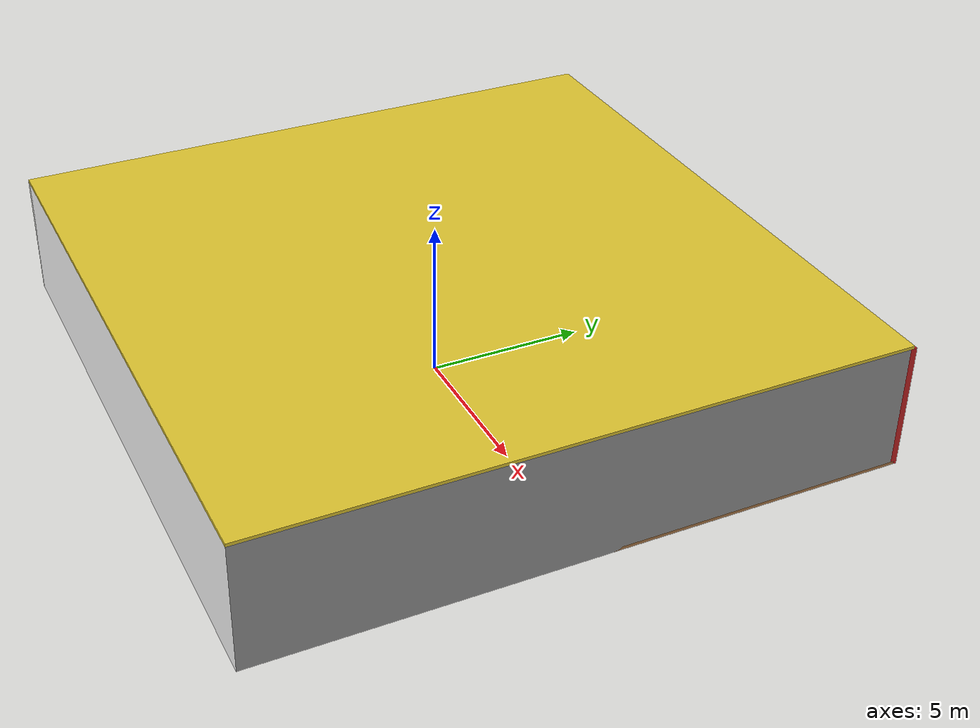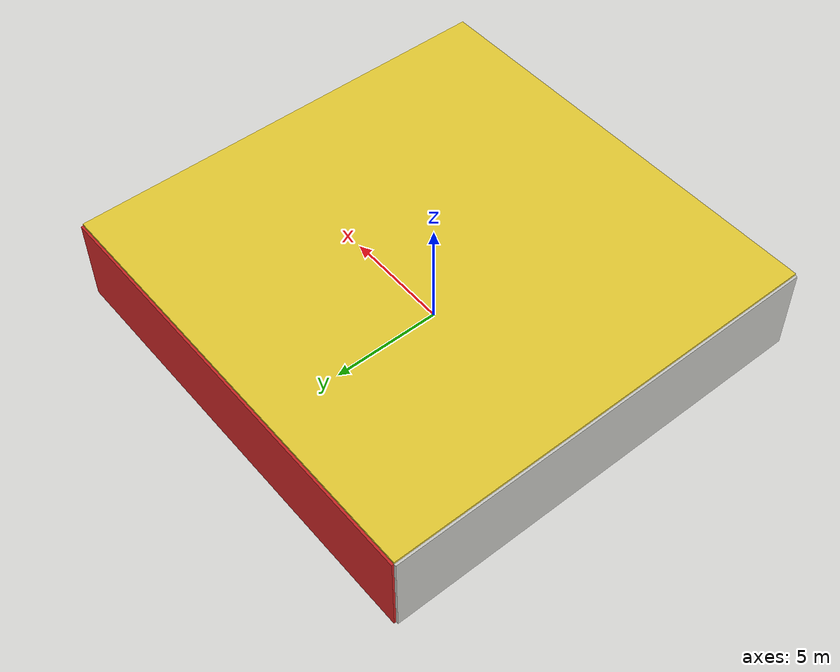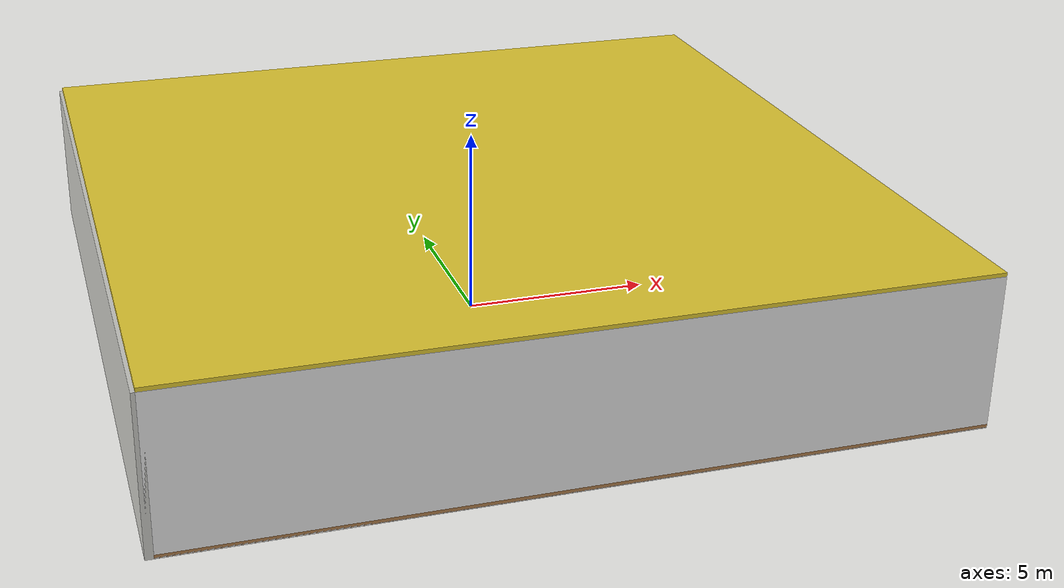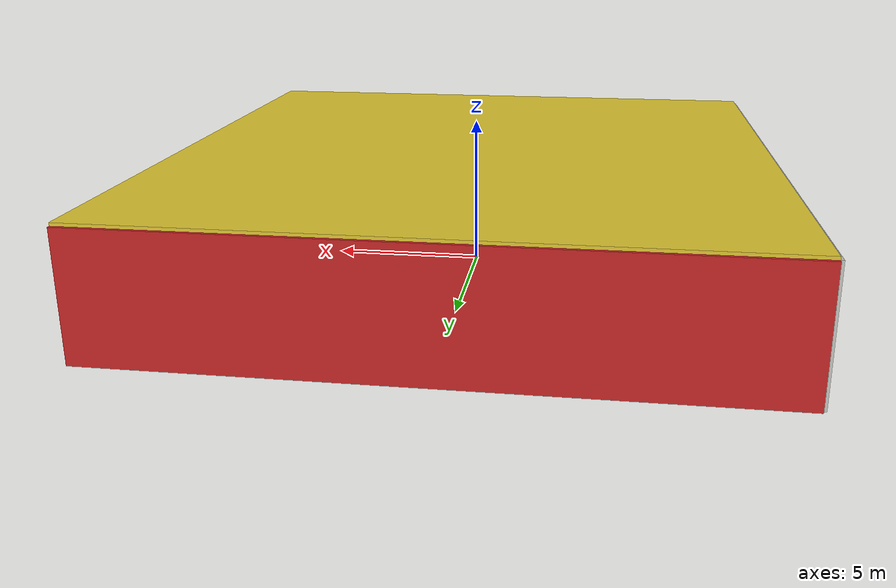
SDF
<sdf version="1.4">
 <world name="default">
  <physics type="ode">
   <max_step_size>0.001</max_step_size>
   <real_time_factor>1</real_time_factor>
   <real_time_update_rate>1000</real_time_update_rate>
   <gravity>0 0 -9.8</gravity>
  </physics>
  <scene><ambient>0.4 0.4 0.4 1</ambient><background>0.7 0.7 0.7 1</background><shadows>1</shadows></scene>
  <model name="Surrounding">
   <static>1</static>
   <link name="Ceiling">
    <collision name="Ceiling_Collision"><geometry><box><size>20 20 0.1</size></box></geometry></collision>
    <visual name="Ceiling_Visual">
     <geometry><box><size>20 20 0.1</size></box></geometry>
     <material>
      <script><uri>file://media/materials/scripts/gazebo.material</uri><name>Gazebo/ZincYellow</name></script>
     </material>
    </visual>
    <pose>0 0 4.05 0 0 0</pose>
   </link>
   <link name="Wall_South">
    <collision name="Wall_South_Collision">
     <geometry><box><size>20 0 4</size></box></geometry>
     <pose>0 0 2 0 -0 0</pose>
    </collision>
    <visual name="Wall_South_Visual">
     <pose>0 0 2 0 -0 0</pose>
     <geometry><box><size>20 0 4</size></box></geometry>
     <material>
      <script><uri>file://media/materials/scripts/gazebo.material</uri><name>Gazebo/WhiteGlow</name></script>
     </material>
    </visual>
    <velocity_decay><linear>0</linear><angular>0</angular></velocity_decay>
    <pose>0 -10 0 0 -0 0</pose>
   </link>
   <link name="Wall_East">
    <collision name="Wall_21_Collision">
     <geometry><box><size>20 0 4</size></box></geometry>
     <pose>0 0 2 0 -0 0</pose>
    </collision>
    <visual name="Wall_21_Visual">
     <pose>0 0 2 0 -0 0</pose>
     <geometry><box><size>20 0 4</size></box></geometry>
     <material>
      <script><uri>file://media/materials/scripts/gazebo.material</uri><name>Gazebo/GreyGradientSky</name></script>
     </material>
    </visual>
    <velocity_decay><linear>0</linear><angular>0</angular></velocity_decay>
    <pose>10 0 0 0 -0 1.5708</pose>
   </link>
   <link name="Wall_North">
    <collision name="Wall_22_Collision">
     <geometry><box><size>20 0.2 4</size></box></geometry>
     <pose>0 0 2 0 -0 0</pose>
    </collision>
    <visual name="Wall_22_Visual">
     <pose>0 0 2 0 -0 0</pose>
     <geometry><box><size>20 0.2 4</size></box></geometry>
     <material>
      <script><uri>file://media/materials/scripts/gazebo.material</uri><name>Gazebo/RedBright</name></script>
     </material>
    </visual>
    <velocity_decay><linear>0</linear><angular>0</angular></velocity_decay>
    <pose>0 10 0 0 -0 0</pose>
   </link>
   <link name="Wall_West">
    <collision name="Wall_23_Collision">
     <geometry><box><size>20 0.2 4</size></box></geometry>
     <pose>0 0 2 0 -0 0</pose>
    </collision>
    <visual name="Wall_23_Visual">
     <pose>0 0 2 0 -0 0</pose>
     <geometry><box><size>20 0.2 4</size></box></geometry>
     <material>
      <script><uri>file://media/materials/scripts/gazebo.material</uri><name>Gazebo/CeilingTiled</name></script>
     </material>
    </visual>
    <velocity_decay><linear>0</linear><angular>0</angular></velocity_decay>
    <pose>-10 0 0 0 0 -1.5708</pose>
   </link>
   <link name="Ground_link">
    <collision name="collision">
     <pose>0 0 .05 0 -0 0</pose>
     <geometry><box><size>20 20 0.1</size></box></geometry>
    </collision>
    <visual name="visual">
     <pose>0 0 .05 0 -0 0</pose>
     <geometry><box><size>20 20 0.1</size></box></geometry>
     <material>
      <script><uri>file://media/materials/scripts/gazebo.material</uri><name>Gazebo/WoodPallet</name></script>
     </material>
    </visual>
   </link>
   <static>1</static>
  </model>
  <spherical_coordinates>
   <surface_model>EARTH_WGS84</surface_model>
   <latitude_deg>0</latitude_deg>
   <longitude_deg>0</longitude_deg>
   <elevation>0</elevation>
   <heading_deg>0</heading_deg>
  </spherical_coordinates>
  <light name="lightball_0" type="diffuse">
   <diffuse>0.8 0.8 0.8 1</diffuse>
   <specular>0.2 0.2 0.2 1</specular>
   <attenuation>
    <range>100</range>
    <constant>0.7</constant>
    <linear>0.01</linear>
    <quadratic>0.001</quadratic>
   </attenuation>
   <direction>-0.5 0.1 -0.9</direction>
   <pose>-7.57188150023 3.01182257469 0.770069222553 0 0 0</pose>
  </light>
  <light name="lightball_1" type="diffuse">
   <diffuse>0.8 0.8 0.8 1</diffuse>
   <specular>0.2 0.2 0.2 1</specular>
   <attenuation>
    <range>100</range>
    <constant>0.7</constant>
    <linear>0.01</linear>
    <quadratic>0.001</quadratic>
   </attenuation>
   <direction>-0.5 0.1 -0.9</direction>
   <pose>-5.29679754703 7.05002120263 3.55189996352 0 0 0</pose>
  </light>
  <light name="lightball_2" type="diffuse">
   <diffuse>0.8 0.8 0.8 1</diffuse>
   <specular>0.2 0.2 0.2 1</specular>
   <attenuation>
    <range>100</range>
    <constant>0.7</constant>
    <linear>0.01</linear>
    <quadratic>0.001</quadratic>
   </attenuation>
   <direction>-0.5 0.1 -0.9</direction>
   <pose>5.2510658225 1.02954330031 3.41784673232 0 0 0</pose>
  </light>
  <light name="lightball_3" type="diffuse">
   <diffuse>0.8 0.8 0.8 1</diffuse>
   <specular>0.2 0.2 0.2 1</specular>
   <attenuation>
    <range>100</range>
    <constant>0.7</constant>
    <linear>0.01</linear>
    <quadratic>0.001</quadratic>
   </attenuation>
   <direction>-0.5 0.1 -0.9</direction>
   <pose>-4.64708205695 -4.40533135707 1.21673856483 0 0 0</pose>
  </light>
  <light name="lightball_4" type="diffuse">
   <diffuse>0.8 0.8 0.8 1</diffuse>
   <specular>0.2 0.2 0.2 1</specular>
   <attenuation>
    <range>100</range>
    <constant>0.7</constant>
    <linear>0.01</linear>
    <quadratic>0.001</quadratic>
   </attenuation>
   <direction>-0.5 0.1 -0.9</direction>
   <pose>-7.57553653026 -2.5139860298 1.04801525992 0 0 0</pose>
  </light>
  <light name="lightball_5" type="diffuse">
   <diffuse>0.8 0.8 0.8 1</diffuse>
   <specular>0.2 0.2 0.2 1</specular>
   <attenuation>
    <range>100</range>
    <constant>0.7</constant>
    <linear>0.01</linear>
    <quadratic>0.001</quadratic>
   </attenuation>
   <direction>-0.5 0.1 -0.9</direction>
   <pose>2.38428437321 -8.00575588195 2.37844470578 0 0 0</pose>
  </light>
  <light name="lightball_6" type="diffuse">
   <diffuse>0.8 0.8 0.8 1</diffuse>
   <specular>0.2 0.2 0.2 1</specular>
   <attenuation>
    <range>100</range>
    <constant>0.7</constant>
    <linear>0.01</linear>
    <quadratic>0.001</quadratic>
   </attenuation>
   <direction>-0.5 0.1 -0.9</direction>
   <pose>2.18634113319 -6.24775626426 1.87282669726 0 0 0</pose>
  </light>
  <light name="lightball_7" type="diffuse">
   <diffuse>0.8 0.8 0.8 1</diffuse>
   <specular>0.2 0.2 0.2 1</specular>
   <attenuation>
    <range>100</range>
    <constant>0.7</constant>
    <linear>0.01</linear>
    <quadratic>0.001</quadratic>
   </attenuation>
   <direction>-0.5 0.1 -0.9</direction>
   <pose>-9.91580917644 5.82182189249 1.4111694962 0 0 0</pose>
  </light>
  <include><uri>model://cabinet</uri><pose>-7.74130568545 -4.12065842242 0 0 0 1.99869075533</pose></include>
  <include><uri>model://table</uri><pose>-8.11145327434 4.57987598817 0 0 0 0.708018321047</pose></include>
  <include>
   <uri>model://construction_cone</uri>
   <pose>-1.56036590199 -6.8407573902 0 0 0 1.99110297144</pose>
  </include>
  <include>
   <uri>model://robocup_3Dsim_goal</uri>
   <pose>-0.816341018458 1.13542395444 0 0 0 0.965109580491</pose>
  </include>
  <include>
   <uri>model://textured_shapes</uri>
   <pose>2.26294363356 4.87918889976 0 0 0 2.2877563456</pose>
  </include>
  <include><uri>model://table</uri><pose>1.67826008142 8.20428035118 0 0 0 2.91997215819</pose></include>
  <include>
   <uri>model://textured_shapes</uri>
   <pose>4.96899561748 6.76679261466 0 0 0 2.47974349288</pose>
  </include>
 </world>
</sdf>

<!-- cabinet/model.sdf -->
<sdf version="1.5">
  <model name="cabinet">
    <static>true</static>
    <link name="cabinet_bottom_plate">
      <inertial>
        <pose>0 0 -1 0 0 0</pose>
        <inertia>
          <ixx>2.050000</ixx>
          <ixy>0</ixy>
          <ixz>0</ixz>
          <iyy>2.050000</iyy>
          <iyz>0</iyz>
          <izz>2.050000</izz>
        </inertia>
        <mass>25.000000</mass>
      </inertial>
      <collision name="cabinet_bottom_plate_geom">
        <pose>0 0 0.010000 0 0 0</pose>
        <geometry>
          <box>
            <size>0.450000 0.450000 0.020000</size>
          </box>
        </geometry>
      </collision>
      <visual name="cabinet_bottom_plate_geom_visual">
        <pose>0 0 0.010000 0 0 0</pose>
        <geometry>
          <box>
            <size>0.450000 0.450000 0.020000</size>
          </box>
        </geometry>
        <material>
          <script>
            <uri>model://media/materials/scripts/gazebo.material</uri>
            <name>Gazebo/Wood</name>
          </script>
        </material>
      </visual>
      <collision name="cabinet_bottom_plate_geom_cabinet_back_plate">
        <pose>0.235000 0 0.510000 0 0 0</pose>
        <geometry>
          <box>
            <size>0.020000 0.450000 1.020000</size>
          </box>
        </geometry>
      </collision>
      <visual name="cabinet_bottom_plate_geom_cabinet_back_plate_visual">
        <pose>0.235000 0 0.510000 0 0 0</pose>
        <geometry>
          <box>
            <size>0.020000 0.450000 1.020000</size>
          </box>
        </geometry>
        <material>
          <script>
            <uri>model://media/materials/scripts/gazebo.material</uri>
            <name>Gazebo/Wood</name>
          </script>
        </material>
      </visual>
      <collision name="cabinet_bottom_plate_geom_cabinet_left_plate">
        <pose>0 0.235000 0.510000 0 0 0</pose>
        <geometry>
          <box>
            <size>0.450000 0.020000 1.020000</size>
          </box>
        </geometry>
      </collision>
      <visual name="cabinet_bottom_plate_geom_cabinet_left_plate_visual">
        <pose>0 0.235000 0.510000 0 0 0</pose>
        <geometry>
          <box>
            <size>0.450000 0.020000 1.020000</size>
          </box>
        </geometry>
        <material>
          <script>
            <uri>model://media/materials/scripts/gazebo.material</uri>
            <name>Gazebo/Wood</name>
          </script>
        </material>
      </visual>
      <collision name="cabinet_bottom_plate_geom_cabinet_middle_plate">
        <pose>0 0 0.510000 0 0 0</pose>
        <geometry>
          <box>
            <size>0.450000 0.450000 0.020000</size>
          </box>
        </geometry>
      </collision>
      <visual name="cabinet_bottom_plate_geom_cabinet_middle_plate_visual">
        <pose>0 0 0.510000 0 0 0</pose>
        <geometry>
          <box>
            <size>0.450000 0.450000 0.020000</size>
          </box>
        </geometry>
        <material>
          <script>
            <uri>model://media/materials/scripts/gazebo.material</uri>
            <name>Gazebo/Wood</name>
          </script>
        </material>
      </visual>
      <collision name="cabinet_bottom_plate_geom_cabinet_right_plate">
        <pose>0 -0.235000 0.510000 0 0 0</pose>
        <geometry>
          <box>
            <size>0.450000 0.020000 1.020000</size>
          </box>
        </geometry>
      </collision>
      <visual name="cabinet_bottom_plate_geom_cabinet_right_plate_visual">
        <pose>0 -0.235000 0.510000 0 0 0</pose>
        <geometry>
          <box>
            <size>0.450000 0.020000 1.020000</size>
          </box>
        </geometry>
        <material>
          <script>
            <uri>model://media/materials/scripts/gazebo.material</uri>
            <name>Gazebo/Wood</name>
          </script>
        </material>
      </visual>
      <collision name="cabinet_bottom_plate_geom_cabinet_top_plate">
        <pose>0 0 1.010000 0 0 0</pose>
        <geometry>
          <box>
            <size>0.450000 0.450000 0.020000</size>
          </box>
        </geometry>
      </collision>
      <visual name="cabinet_bottom_plate_geom_cabinet_top_plate_visual">
        <pose>0 0 1.010000 0 0 0</pose>
        <geometry>
          <box>
            <size>0.450000 0.450000 0.020000</size>
          </box>
        </geometry>
        <material>
          <script>
            <uri>model://media/materials/scripts/gazebo.material</uri>
            <name>Gazebo/Wood</name>
          </script>
        </material>
      </visual>
    </link>
  </model>
</sdf>

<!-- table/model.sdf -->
<sdf version="1.5">
  <model name="table">
    <static>true</static>
    <link name="link">
      <collision name="surface">
        <pose>0 0 1.0 0 0 0</pose>
        <geometry>
          <box>
            <size>1.5 0.8 0.03</size>
          </box>
        </geometry>
        <surface>
          <friction>
            <ode>
              <mu>0.6</mu>
              <mu2>0.6</mu2>
            </ode>
          </friction>
        </surface>
      </collision>
      <visual name="visual1">
        <pose>0 0 1.0 0 0 0</pose>
        <geometry>
          <box>
            <size>1.5 0.8 0.03</size>
          </box>
        </geometry>
        <material>
          <script>
            <uri>model://media/materials/scripts/gazebo.material</uri>
            <name>Gazebo/Wood</name>
          </script>
        </material>
      </visual>
      <collision name="front_left_leg">
        <pose>0.68 0.38 0.5 0 0 0</pose>
        <geometry>
          <cylinder>
            <radius>0.02</radius>
            <length>1.0</length>
          </cylinder>
        </geometry>
      </collision>
      <visual name="front_left_leg">
        <pose>0.68 0.38 0.5 0 0 0</pose>
        <geometry>
          <cylinder>
            <radius>0.02</radius>
            <length>1.0</length>
          </cylinder>
        </geometry>
        <material>
          <script>
            <uri>model://media/materials/scripts/gazebo.material</uri>
            <name>Gazebo/Grey</name>
          </script>
        </material>
      </visual>
      <collision name="front_right_leg">
        <pose>0.68 -0.38 0.5 0 0 0</pose>
        <geometry>
          <cylinder>
            <radius>0.02</radius>
            <length>1.0</length>
          </cylinder>
        </geometry>
      </collision>
      <visual name="front_right_leg">
        <pose>0.68 -0.38 0.5 0 0 0</pose>
        <geometry>
          <cylinder>
            <radius>0.02</radius>
            <length>1.0</length>
          </cylinder>
        </geometry>
        <material>
          <script>
            <uri>model://media/materials/scripts/gazebo.material</uri>
            <name>Gazebo/Grey</name>
          </script>
        </material>
      </visual>
      <collision name="back_right_leg">
        <pose>-0.68 -0.38 0.5 0 0 0</pose>
        <geometry>
          <cylinder>
            <radius>0.02</radius>
            <length>1.0</length>
          </cylinder>
        </geometry>
      </collision>
      <visual name="back_right_leg">
        <pose>-0.68 -0.38 0.5 0 0 0</pose>
        <geometry>
          <cylinder>
            <radius>0.02</radius>
            <length>1.0</length>
          </cylinder>
        </geometry>
        <material>
          <script>
            <uri>model://media/materials/scripts/gazebo.material</uri>
            <name>Gazebo/Grey</name>
          </script>
        </material>
      </visual>
      <collision name="back_left_leg">
        <pose>-0.68 0.38 0.5 0 0 0</pose>
        <geometry>
          <cylinder>
            <radius>0.02</radius>
            <length>1.0</length>
          </cylinder>
        </geometry>
      </collision>
      <visual name="back_left_leg">
        <pose>-0.68 0.38 0.5 0 0 0</pose>
        <geometry>
          <cylinder>
            <radius>0.02</radius>
            <length>1.0</length>
          </cylinder>
        </geometry>
        <material>
          <script>
            <uri>model://media/materials/scripts/gazebo.material</uri>
            <name>Gazebo/Grey</name>
          </script>
        </material>
      </visual>
    </link>
  </model>
</sdf>

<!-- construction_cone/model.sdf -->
<sdf version="1.5">
  <model name="Construction Cone">
    <link name="link">
      <collision name="collision">
        <geometry>
          <mesh>
            <scale>10 10 10</scale>
            <uri>file://isr-testbed/construction_cone/meshes/construction_cone.dae</uri>
          </mesh>
        </geometry>
      </collision>
      <visual name="visual">
        <geometry>
          <mesh>
            <scale>10 10 10</scale>
            <uri>file://isr-testbed/construction_cone/meshes/construction_cone.dae</uri>
          </mesh>
        </geometry>
      </visual>
    </link>
  </model>
</sdf>

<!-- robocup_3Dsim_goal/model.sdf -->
<sdf version="1.5">
  <model name="robocup_3d_goal">
    <static>true</static>
    <link name="left_post">
      <pose>0 1.05 0.45 0 0 0</pose>
      <collision name="collision">
        <geometry>
          <cylinder>
            <radius>0.05</radius>
            <length>0.9</length>
          </cylinder>
        </geometry>
      </collision>
      <visual name="visual">
        <geometry>
          <cylinder>
            <radius>0.05</radius>
            <length>0.9</length>
          </cylinder>
        </geometry>
        <material>
          <script>
            <uri>file://media/materials/scripts/gazebo.material</uri>
            <name>Gazebo/ZincYellow</name>
          </script>
        </material>
      </visual>
    </link>
    <link name="left_support_horiz_lower">
      <pose>0.30 1.05 0.01 0 0 0</pose>
      <collision name="collision">
        <geometry>
          <box>
            <size>0.50 0.02 0.02</size>
          </box>
        </geometry>
      </collision>
      <visual name="visual">
        <geometry>
          <box>
            <size>0.50 0.02 0.02</size>
          </box>
        </geometry>
        <material>
          <script>
            <uri>file://media/materials/scripts/gazebo.material</uri>
            <name>Gazebo/White</name>
          </script>
        </material>
      </visual>
    </link>
    <link name="left_support_horiz_upper">
      <pose>0.30 1.05 0.79 0 0 0</pose>
      <collision name="collision">
        <geometry>
          <box>
            <size>0.50 0.02 0.02</size>
          </box>
        </geometry>
      </collision>
      <visual name="visual">
        <geometry>
          <box>
            <size>0.50 0.02 0.02</size>
          </box>
        </geometry>
        <material>
          <script>
            <uri>file://media/materials/scripts/gazebo.material</uri>
            <name>Gazebo/White</name>
          </script>
        </material>
      </visual>
    </link>
    <link name="left_support_vertical">
      <pose>0.56 1.05 0.4 0 1.5708 0</pose>
      <collision name="collision">
        <geometry>
          <box>
            <size>0.80 0.02 0.02</size>
          </box>
        </geometry>
      </collision>
      <visual name="visual">
        <geometry>
          <box>
            <size>0.80 0.02 0.02</size>
          </box>
        </geometry>
        <material>
          <script>
            <uri>file://media/materials/scripts/gazebo.material</uri>
            <name>Gazebo/White</name>
          </script>
        </material>
      </visual>
    </link>
    <link name="right_support_horiz_lower">
      <pose>0.30 -1.05 0.01 0 0 0</pose>
      <collision name="collision">
        <geometry>
          <box>
            <size>0.50 0.02 0.02</size>
          </box>
        </geometry>
      </collision>
      <visual name="visual">
        <geometry>
          <box>
            <size>0.50 0.02 0.02</size>
          </box>
        </geometry>
        <material>
          <script>
            <uri>file://media/materials/scripts/gazebo.material</uri>
            <name>Gazebo/White</name>
          </script>
        </material>
      </visual>
    </link>
    <link name="right_support_horiz_upper">
      <pose>0.30 -1.05 0.79 0 0 0</pose>
      <collision name="collision">
        <geometry>
          <box>
            <size>0.50 0.02 0.02</size>
          </box>
        </geometry>
      </collision>
      <visual name="visual">
        <geometry>
          <box>
            <size>0.50 0.02 0.02</size>
          </box>
        </geometry>
        <material>
          <script>
            <uri>file://media/materials/scripts/gazebo.material</uri>
            <name>Gazebo/White</name>
          </script>
        </material>
      </visual>
    </link>
    <link name="right_support_vertical">
      <pose>0.56 -1.05 0.4 0 1.5708 0</pose>
      <collision name="collision">
        <geometry>
          <box>
            <size>0.80 0.02 0.02</size>
          </box>
        </geometry>
      </collision>
      <visual name="visual">
        <geometry>
          <box>
            <size>0.80 0.02 0.02</size>
          </box>
        </geometry>
        <material>
          <script>
            <uri>file://media/materials/scripts/gazebo.material</uri>
            <name>Gazebo/White</name>
          </script>
        </material>
      </visual>
    </link>
    <link name="center_support_horiz_lower">
      <pose>0.56 0 0.01 0 1.5708 0</pose>
      <collision name="collision">
        <geometry>
          <box>
            <size>0.02 2.08 0.02</size>
          </box>
        </geometry>
      </collision>
      <visual name="visual">
        <geometry>
          <box>
            <size>0.02 2.08 0.02</size>
          </box>
        </geometry>
        <material>
          <script>
            <uri>file://media/materials/scripts/gazebo.material</uri>
            <name>Gazebo/White</name>
          </script>
        </material>
      </visual>
    </link>
    <link name="center_support_horiz_upper">
      <pose>0.56 0 0.79 0 1.5708 0</pose>
      <collision name="collision">
        <geometry>
          <box>
            <size>0.02 2.08 0.02</size>
          </box>
        </geometry>
      </collision>
      <visual name="visual">
        <geometry>
          <box>
            <size>0.02 2.08 0.02</size>
          </box>
        </geometry>
        <material>
          <script>
            <uri>file://media/materials/scripts/gazebo.material</uri>
            <name>Gazebo/White</name>
          </script>
        </material>
      </visual>
    </link>
    <link name="right_post">
      <pose>0 -1.05 0.45 0 0 0</pose>
      <collision name="collision">
        <geometry>
          <cylinder>
            <radius>0.05</radius>
            <length>0.9</length>
          </cylinder>
        </geometry>
      </collision>
      <visual name="visual">
        <geometry>
          <cylinder>
            <radius>0.05</radius>
            <length>0.9</length>
          </cylinder>
        </geometry>
        <material>
          <script>
            <uri>file://media/materials/scripts/gazebo.material</uri>
            <name>Gazebo/ZincYellow</name>
          </script>
        </material>
      </visual>
    </link>
    <link name="crossbar">
      <pose>0 0 0.85 1.57 1.57 0</pose>
      <collision name="collision">
        <geometry>
          <cylinder>
            <radius>0.05</radius>
            <length>2.0</length>
          </cylinder>
        </geometry>
      </collision>
      <visual name="visual">
        <geometry>
          <cylinder>
            <radius>0.05</radius>
            <length>2.0</length>
          </cylinder>
        </geometry>
        <material>
          <script>
            <uri>file://media/materials/scripts/gazebo.material</uri>
            <name>Gazebo/ZincYellow</name>
          </script>
        </material>
      </visual>
    </link>
    <link name="center_net">
      <pose>0.56 0 0.40 0 0 0</pose>
      <collision name="collision">
        <geometry>
          <box>
            <size>0.01 2.1 0.80</size>
          </box>
        </geometry>
      </collision>
      <visual name="visual">
        <geometry>
          <box>
            <size>0.01 2.1 0.80</size>
          </box>
        </geometry>
        <material>
          <script>
            <uri>model://../model_source/models/robocup09_spl_field/materials/scripts/</uri>
            <uri>model://../model_source/models/robocup09_spl_field/materials/textures/</uri>
            <name>RoboCup/Net</name>
          </script>
        </material>
      </visual>
    </link>
    <link name="left_net">
      <pose>0.30 1.05 0.40 0 0 0</pose>
      <collision name="collision">
        <geometry>
          <box>
            <size>0.50 0.01 0.76</size>
          </box>
        </geometry>
      </collision>
      <visual name="visual">
        <geometry>
          <box>
            <size>0.50 0.01 0.76</size>
          </box>
        </geometry>
        <material>
          <script>
            <uri>model://../model_source/models/robocup09_spl_field/materials/scripts/</uri>
            <uri>model://../model_source/models/robocup09_spl_field/materials/textures/</uri>
            <name>RoboCup/Net</name>
          </script>
        </material>
      </visual>
    </link>
    <link name="right_net">
      <pose>0.30 -1.05 0.40 0 0 0</pose>
      <collision name="collision">
        <geometry>
          <box>
            <size>0.50 0.01 0.76</size>
          </box>
        </geometry>
      </collision>
      <visual name="visual">
        <geometry>
          <box>
            <size>0.50 0.01 0.76</size>
          </box>
        </geometry>
        <material>
          <script>
            <uri>model://../model_source/models/robocup09_spl_field/materials/scripts/</uri>
            <uri>model://../model_source/models/robocup09_spl_field/materials/textures/</uri>
            <name>RoboCup/Net</name>
          </script>
        </material>
      </visual>
    </link>
  </model>
</sdf>

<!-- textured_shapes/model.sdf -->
<sdf version="1.6">
  <model name="textured_shapes">
    <pose>0 0 0.5 0 0 0</pose>
    <link name="box">
      <pose>0 -1.5 0 0 0 0</pose>
      <collision name="collision">
        <geometry>
          <box>
            <size>1 1 1</size>
          </box>
        </geometry>
      </collision>
      <visual name="visual">
        <geometry>
          <box>
            <size>1 1 1</size>
          </box>
        </geometry>
        <material>
          <script>
            <uri>model://../model_source/models/textured_shapes/materials/scripts</uri>
            <uri>model://../model_source/models/textured_shapes/materials/textures</uri>
            <name>TexturedShape/Squares</name>
          </script>
        </material>
      </visual>
    </link>
    <link name="sphere">
      <collision name="collision">
        <geometry>
          <sphere>
            <radius>0.5</radius>
          </sphere>
        </geometry>
      </collision>
      <visual name="visual">
        <geometry>
          <sphere>
            <radius>0.5</radius>
          </sphere>
        </geometry>
        <material>
          <script>
            <uri>model://../model_source/models/textured_shapes/materials/scripts</uri>
            <uri>model://../model_source/models/textured_shapes/materials/textures</uri>
            <name>TexturedShape/Squares</name>
          </script>
        </material>
      </visual>
    </link>
    <link name="cylinder">
      <pose>0 1.5 0 0 0 0</pose>
      <collision name="collision">
        <geometry>
          <cylinder>
            <radius>0.5</radius>
            <length>1</length>
          </cylinder>
        </geometry>
      </collision>
      <visual name="visual">
        <geometry>
          <cylinder>
            <radius>0.5</radius>
            <length>1</length>
          </cylinder>
        </geometry>
        <material>
          <script>
            <uri>model://../model_source/models/textured_shapes/materials/scripts</uri>
            <uri>model://../model_source/models/textured_shapes/materials/textures</uri>
            <name>TexturedShape/Squares</name>
          </script>
        </material>
      </visual>
    </link>
  </model>
</sdf>
